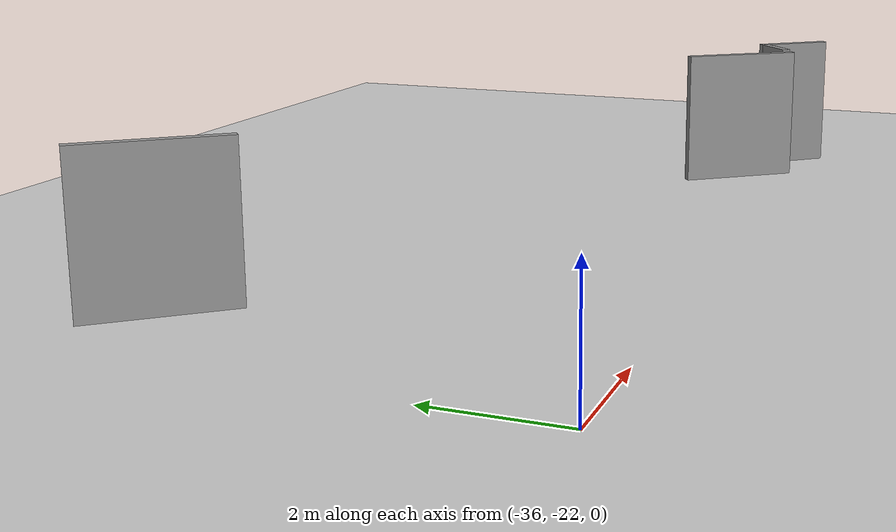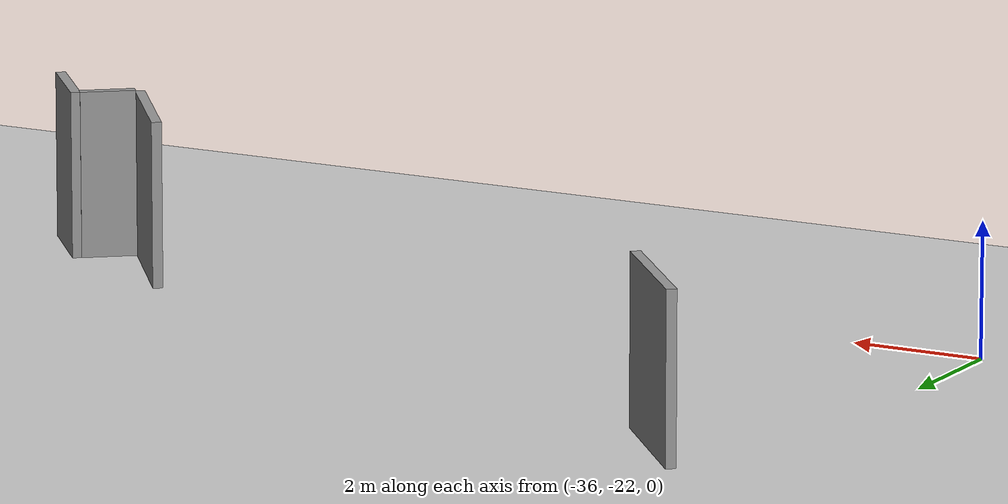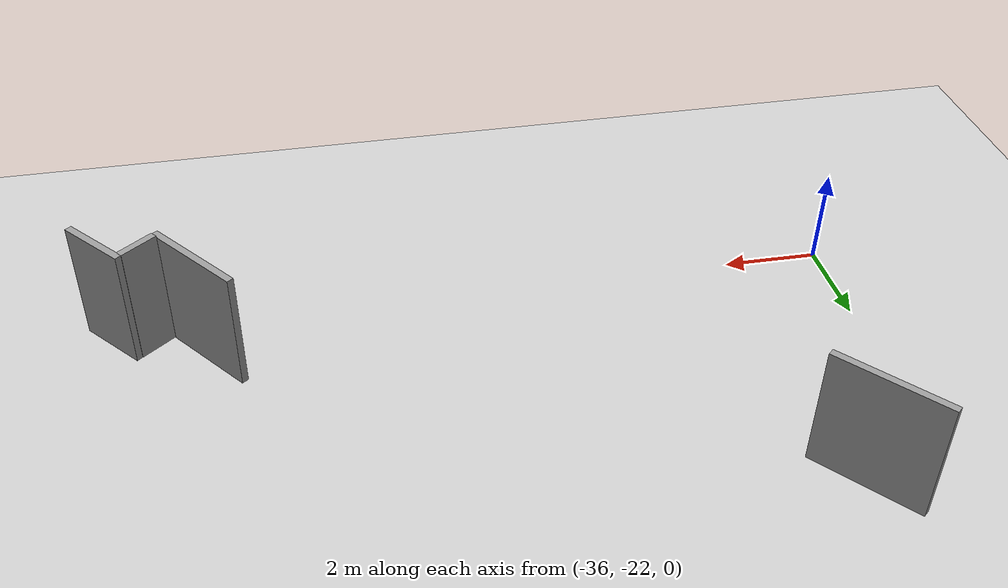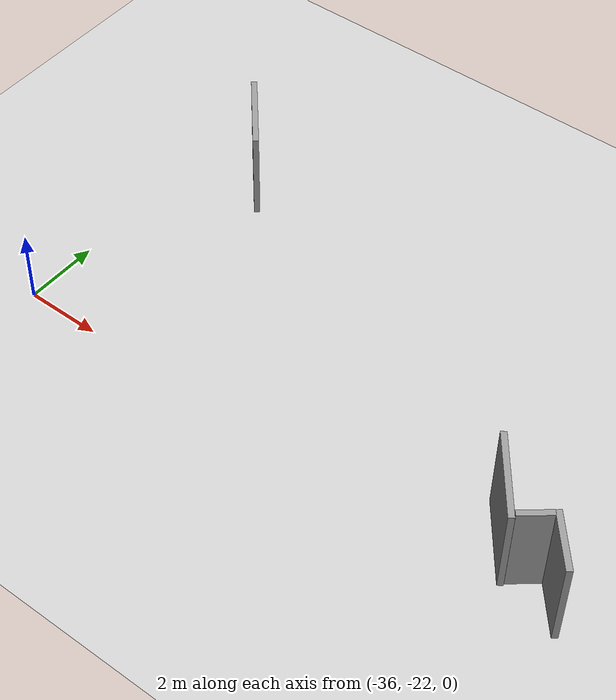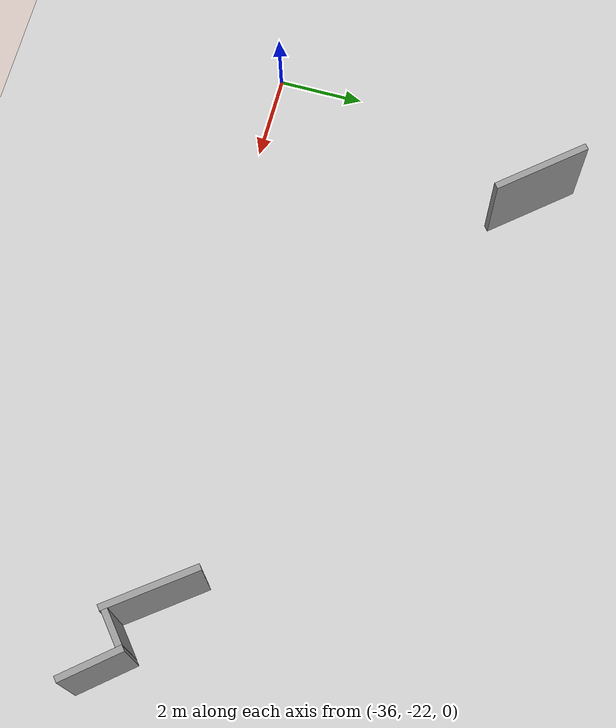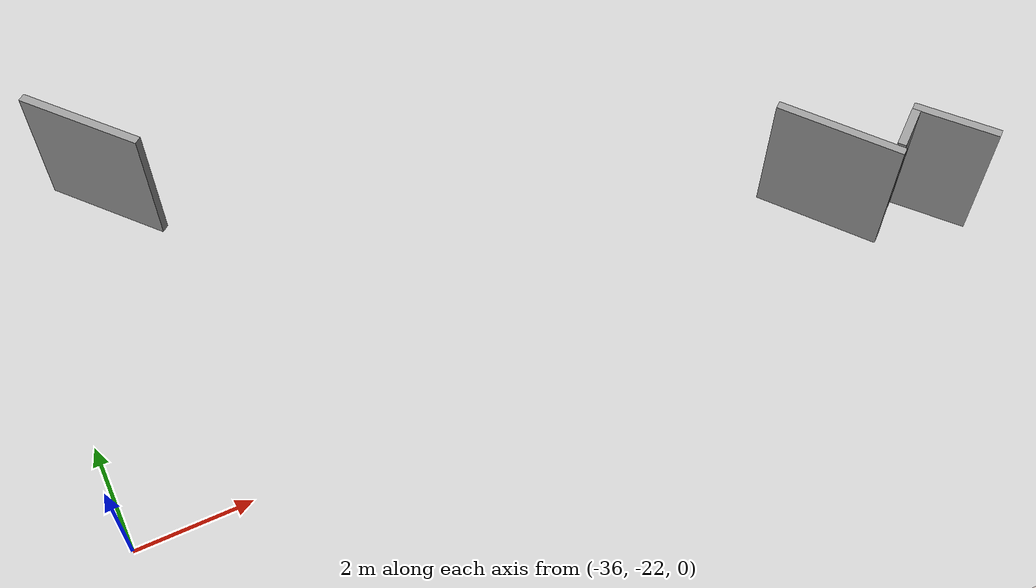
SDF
<sdf version="1.6">
 <world name="default">
  <model name="ground_plane">
   <static>1</static>
   <link name="link">
    <collision name="collision">
     <geometry><plane><normal>0 0 1</normal><size>100 100</size></plane></geometry>
     <surface>
      <contact><collide_bitmask>65535</collide_bitmask></contact>
      <friction><ode><mu>100</mu><mu2>50</mu2></ode></friction>
     </surface>
    </collision>
    <visual name="visual">
     <cast_shadows>0</cast_shadows>
     <geometry><plane><normal>0 0 1</normal><size>100 100</size></plane></geometry>
     <material>
      <script><uri>file://media/materials/scripts/gazebo.material</uri><name>Gazebo/Grey</name></script>
     </material>
    </visual>
   </link>
  </model>
  <model name="wall(2.3)_0">
   <link name="Wall_0">
    <pose>0.83486 -0.115986 -0.042972 0 -0 0</pose>
    <inertial>
     <mass>1</mass>
     <inertia><ixx>1</ixx><ixy>0</ixy><ixz>0</ixz><iyy>1</iyy><iyz>0</iyz><izz>1</izz></inertia>
    </inertial>
    <visual name="Wall_0_Visual">
     <pose>0 0 1.25 0 -0 0</pose>
     <geometry><box><size>2.3 0.15 2.5</size></box></geometry>
     <material>
      <script><uri>file://media/materials/scripts/gazebo.material</uri><name>Gazebo/Grey</name></script>
      <ambient>1 1 1 1</ambient>
      <shader type="vertex"><normal_map>__default__</normal_map></shader>
      <diffuse>0.7 0.7 0.7 1</diffuse>
      <specular>0.01 0.01 0.01 1</specular>
      <emissive>0 0 0 1</emissive>
     </material>
     <meta><layer>0</layer></meta>
    </visual>
    <collision name="Wall_0_Collision">
     <pose>0 0 1.25 0 -0 0</pose>
     <geometry><box><size>2.25 0.15 2.5</size></box></geometry>
     <surface>
      <friction>
       <ode><mu>1</mu><mu2>1</mu2><fdir1>0 0 0</fdir1><slip1>0</slip1><slip2>0</slip2></ode>
       <torsional>
        <coefficient>1</coefficient>
        <patch_radius>0</patch_radius>
        <surface_radius>0</surface_radius>
        <use_patch_radius>1</use_patch_radius>
        <ode><slip>0</slip></ode>
       </torsional>
      </friction>
      <bounce><restitution_coefficient>0</restitution_coefficient><threshold>1e+06</threshold></bounce>
      <contact>
       <collide_without_contact>0</collide_without_contact>
       <collide_without_contact_bitmask>1</collide_without_contact_bitmask>
       <collide_bitmask>1</collide_bitmask>
       <ode>
        <soft_cfm>0</soft_cfm>
        <soft_erp>0.2</soft_erp>
        <kp>1e+13</kp>
        <kd>1</kd>
        <max_vel>0.01</max_vel>
        <min_depth>0</min_depth>
       </ode>
       <bullet>
        <split_impulse>1</split_impulse>
        <split_impulse_penetration_threshold>-0.01</split_impulse_penetration_threshold>
        <soft_cfm>0</soft_cfm>
        <soft_erp>0.2</soft_erp>
        <kp>1e+13</kp>
        <kd>1</kd>
       </bullet>
      </contact>
     </surface>
    </collision>
   </link>
   <static>1</static>
   <pose>-34.7318 -14.6538 0 0 0 -0.869317</pose>
  </model>
  <model name="wall(0.83)_0_clone_1">
   <link name="Wall_0">
    <inertial>
     <mass>1</mass>
     <inertia><ixx>1</ixx><ixy>0</ixy><ixz>0</ixz><iyy>1</iyy><iyz>0</iyz><izz>1</izz></inertia>
    </inertial>
    <visual name="Wall_0_Visual">
     <pose>0 0 1.25 0 -0 0</pose>
     <geometry><box><size>0.83 0.15 2.5</size></box></geometry>
     <material>
      <script><uri>file://media/materials/scripts/gazebo.material</uri><name>Gazebo/Grey</name></script>
      <ambient>1 1 1 1</ambient>
      <shader type="vertex"><normal_map>__default__</normal_map></shader>
      <diffuse>0.7 0.7 0.7 1</diffuse>
      <specular>0.01 0.01 0.01 1</specular>
      <emissive>0 0 0 1</emissive>
     </material>
     <meta><layer>0</layer></meta>
    </visual>
    <collision name="Wall_0_Collision">
     <pose>0 0 1.25 0 -0 0</pose>
     <geometry><box><size>0.83 0.15 2.5</size></box></geometry>
     <surface>
      <friction>
       <ode><mu>1</mu><mu2>1</mu2><fdir1>0 0 0</fdir1><slip1>0</slip1><slip2>0</slip2></ode>
       <torsional>
        <coefficient>1</coefficient>
        <patch_radius>0</patch_radius>
        <surface_radius>0</surface_radius>
        <use_patch_radius>1</use_patch_radius>
        <ode><slip>0</slip></ode>
       </torsional>
      </friction>
      <bounce><restitution_coefficient>0</restitution_coefficient><threshold>1e+06</threshold></bounce>
      <contact>
       <collide_without_contact>0</collide_without_contact>
       <collide_without_contact_bitmask>1</collide_without_contact_bitmask>
       <collide_bitmask>1</collide_bitmask>
       <ode>
        <soft_cfm>0</soft_cfm>
        <soft_erp>0.2</soft_erp>
        <kp>1e+13</kp>
        <kd>1</kd>
        <max_vel>0.01</max_vel>
        <min_depth>0</min_depth>
       </ode>
       <bullet>
        <split_impulse>1</split_impulse>
        <split_impulse_penetration_threshold>-0.01</split_impulse_penetration_threshold>
        <soft_cfm>0</soft_cfm>
        <soft_erp>0.2</soft_erp>
        <kp>1e+13</kp>
        <kd>1</kd>
       </bullet>
      </contact>
     </surface>
    </collision>
   </link>
   <static>1</static>
   <pose>-21.8862 -21.5534 0 0 -0 0.684741</pose>
  </model>
  <model name="wall(1.5)_0">
   <link name="Wall_0">
    <inertial>
     <mass>1</mass>
     <inertia><ixx>1</ixx><ixy>0</ixy><ixz>0</ixz><iyy>1</iyy><iyz>0</iyz><izz>1</izz></inertia>
    </inertial>
    <visual name="Wall_0_Visual">
     <pose>0 0 1.25 0 -0 0</pose>
     <geometry><box><size>1.5 0.15 2.5</size></box></geometry>
     <material>
      <script><uri>file://media/materials/scripts/gazebo.material</uri><name>Gazebo/Grey</name></script>
      <ambient>1 1 1 1</ambient>
      <shader type="vertex"><normal_map>__default__</normal_map></shader>
      <diffuse>0.7 0.7 0.7 1</diffuse>
      <specular>0.01 0.01 0.01 1</specular>
      <emissive>0 0 0 1</emissive>
     </material>
     <meta><layer>0</layer></meta>
    </visual>
    <collision name="Wall_0_Collision">
     <pose>0 0 1.25 0 -0 0</pose>
     <geometry><box><size>1.5 0.15 2.5</size></box></geometry>
     <surface>
      <friction>
       <ode><mu>1</mu><mu2>1</mu2><fdir1>0 0 0</fdir1><slip1>0</slip1><slip2>0</slip2></ode>
       <torsional>
        <coefficient>1</coefficient>
        <patch_radius>0</patch_radius>
        <surface_radius>0</surface_radius>
        <use_patch_radius>1</use_patch_radius>
        <ode><slip>0</slip></ode>
       </torsional>
      </friction>
      <bounce><restitution_coefficient>0</restitution_coefficient><threshold>1e+06</threshold></bounce>
      <contact>
       <collide_without_contact>0</collide_without_contact>
       <collide_without_contact_bitmask>1</collide_without_contact_bitmask>
       <collide_bitmask>1</collide_bitmask>
       <ode>
        <soft_cfm>0</soft_cfm>
        <soft_erp>0.2</soft_erp>
        <kp>1e+13</kp>
        <kd>1</kd>
        <max_vel>0.01</max_vel>
        <min_depth>0</min_depth>
       </ode>
       <bullet>
        <split_impulse>1</split_impulse>
        <split_impulse_penetration_threshold>-0.01</split_impulse_penetration_threshold>
        <soft_cfm>0</soft_cfm>
        <soft_erp>0.2</soft_erp>
        <kp>1e+13</kp>
        <kd>1</kd>
       </bullet>
      </contact>
     </surface>
    </collision>
   </link>
   <static>1</static>
   <pose>-21.0752 -21.7678 0 0 0 -0.86654</pose>
  </model>
  <model name="wall(2)_0">
   <link name="Wall_0">
    <pose>0.83486 -0.115985 -0.042972 0 -0 0</pose>
    <inertial>
     <mass>1</mass>
     <inertia><ixx>1</ixx><ixy>0</ixy><ixz>0</ixz><iyy>1</iyy><iyz>0</iyz><izz>1</izz></inertia>
    </inertial>
    <visual name="Wall_0_Visual">
     <pose>0 0 1.25 0 -0 0</pose>
     <geometry><box><size>2.25 0.15 2.5</size></box></geometry>
     <material>
      <script><uri>file://media/materials/scripts/gazebo.material</uri><name>Gazebo/Grey</name></script>
      <ambient>1 1 1 1</ambient>
      <shader type="vertex"><normal_map>__default__</normal_map></shader>
      <diffuse>0.7 0.7 0.7 1</diffuse>
      <specular>0.01 0.01 0.01 1</specular>
      <emissive>0 0 0 1</emissive>
     </material>
     <meta><layer>0</layer></meta>
    </visual>
    <collision name="Wall_0_Collision">
     <pose>0 0 1.25 0 -0 0</pose>
     <geometry><box><size>2.25 0.15 2.5</size></box></geometry>
     <surface>
      <friction>
       <ode><mu>1</mu><mu2>1</mu2><fdir1>0 0 0</fdir1><slip1>0</slip1><slip2>0</slip2></ode>
       <torsional>
        <coefficient>1</coefficient>
        <patch_radius>0</patch_radius>
        <surface_radius>0</surface_radius>
        <use_patch_radius>1</use_patch_radius>
        <ode><slip>0</slip></ode>
       </torsional>
      </friction>
      <bounce><restitution_coefficient>0</restitution_coefficient><threshold>1e+06</threshold></bounce>
      <contact>
       <collide_without_contact>0</collide_without_contact>
       <collide_without_contact_bitmask>1</collide_without_contact_bitmask>
       <collide_bitmask>1</collide_bitmask>
       <ode>
        <soft_cfm>0</soft_cfm>
        <soft_erp>0.2</soft_erp>
        <kp>1e+13</kp>
        <kd>1</kd>
        <max_vel>0.01</max_vel>
        <min_depth>0</min_depth>
       </ode>
       <bullet>
        <split_impulse>1</split_impulse>
        <split_impulse_penetration_threshold>-0.01</split_impulse_penetration_threshold>
        <soft_cfm>0</soft_cfm>
        <soft_erp>0.2</soft_erp>
        <kp>1e+13</kp>
        <kd>1</kd>
       </bullet>
      </contact>
     </surface>
    </collision>
   </link>
   <static>1</static>
   <pose>-23.3071 -20.3191 0 0 0 -0.917642</pose>
  </model>
 </world>
</sdf>
